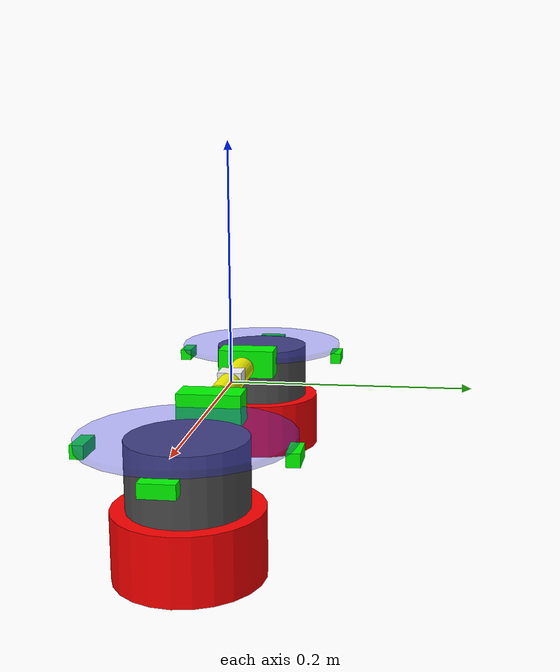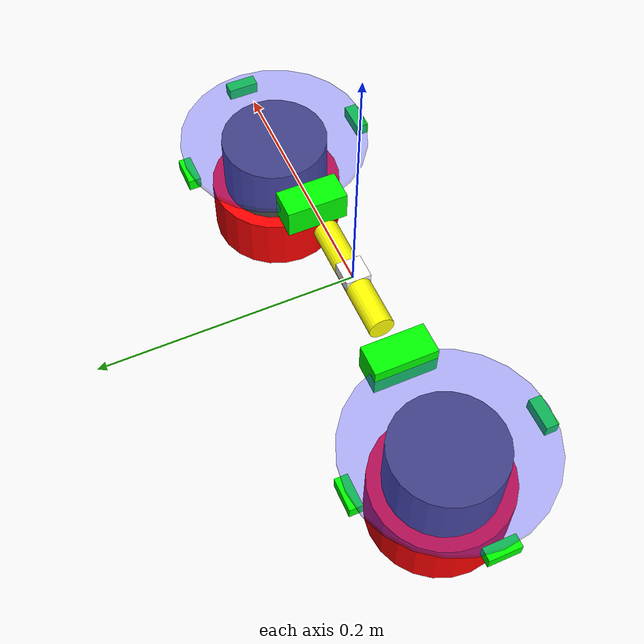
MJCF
<mujoco>
	<worldbody>
		<body name="root">
			<joint type="free" />
			<geom name="wires" type="box" pos="0 0 .005" size=".01 .01 .005" rgba="1 1 1 1" mass=".01" />
			<body name="a_module" pos="-.155 0 0">
				<geom name="a_house" type="cylinder" pos="0 0 0" size="0.0775 .0025" rgba=".2 .2 1 .35" mass=".15" />
				<joint name="a_h1" type="hinge" axis="0 0 1" limited="true" range="-180 180" stiffness="1" />
                <joint name="a_h2" type="hinge" pos=".0775 0 0" axis="0 1 0" limited="true" range="-45 45" />
				<geom name="a_connector" type="box" pos=".0775 0 0" size=".0125 .025 .0125" rgba="0 1 0 1" mass=".025" />
				<geom name="a_connector_part_a" type="box" pos="-.075 0 -.01" size=".005 .0125 .005" rgba="0 1 0 1" mass=".00000025" />
				<geom name="a_connector_part_b" type="box" pos="0 .075 -.01" size=".0125 .005 .005" rgba="0 1 0 1" mass=".00000025" />
				<geom name="a_connector_part_c" type="box" pos="0 -.075 -.01" size=".0125 .005 .005" rgba="0 1 0 1" mass=".00000025" />
				<body name="a_chamber" pos="0 0 0">
					<geom name="a_gear" type="cylinder" fromto="0 0 0 0 0 -.05" size=".044" rgba=".3 .3 .3 1" mass=".05" />
					<geom name="a_chamber" type="cylinder" fromto="0 0 -.05 0 0 -.1" size=".055" rgba="1 0 0 1" mass=".3" />
				</body>
			</body>
            <body name="connector">
                <joint name="h3" type="hinge" axis="1 0 0" limited="true" range="-90 90" stiffness="1" />
                <geom name="arm" type="cylinder" fromto="-.05 0 0 .05 0 0" size=".01" rgba="1 1 0 1" mass=".15" />
            </body>
            <body name="b_module" pos=".155 0 0" euler="0 0 180">
                <geom name="b_house" type="cylinder" pos="0 0 0" size="0.0775 .0025" rgba=".2 .2 1 .35" mass=".15" />
                <joint name="b_h1" type="hinge" axis="0 0 1" limited="true" range="-180 180" stiffness="1" />
                <joint name="b_h2" type="hinge" pos=".0775 0 0" axis="0 1 0" limited="true" range="-45 45" />
                <geom name="b_connector" type="box" pos=".0775 0 0" size=".0125 .025 .0125" rgba="0 1 0 1" mass=".025" />
                <geom name="b_connector_part_a" type="box" pos="-.075 0 -.01" size=".005 .0125 .005" rgba="0 1 0 1" mass=".00000025" />
                <geom name="b_connector_part_b" type="box" pos="0 .075 -.01" size=".0125 .005 .005" rgba="0 1 0 1" mass=".00000025" />
                <geom name="b_connector_part_c" type="box" pos="0 -.075 -.01" size=".0125 .005 .005" rgba="0 1 0 1" mass=".00000025" />
                <body name="b_chamber" pos="0 0 0">
                    <geom name="b_gear" type="cylinder" fromto="0 0 0 0 0 -.05" size=".044" rgba=".3 .3 .3 1" mass=".05" />
                    <geom name="b_chamber" type="cylinder" fromto="0 0 -.05 0 0 -.1" size=".055" rgba="1 0 0 1" mass=".3" />
                </body>
            </body>
		</body>
	</worldbody>
    <equality>
        <connect body1="a_module" body2="connector" anchor=".0775 0 0" />
        <connect body1="b_module" body2="connector" anchor=".0775 0 0" />
    </equality>
    <actuator>
        <motor name="a_h1" ctrllimited="true" ctrlrange="-1 1" joint="a_h1" gear="10" />
        <motor name="b_h1" ctrllimited="true" ctrlrange="-1 1" joint="b_h1" gear="10" />
    </actuator>
</mujoco>
